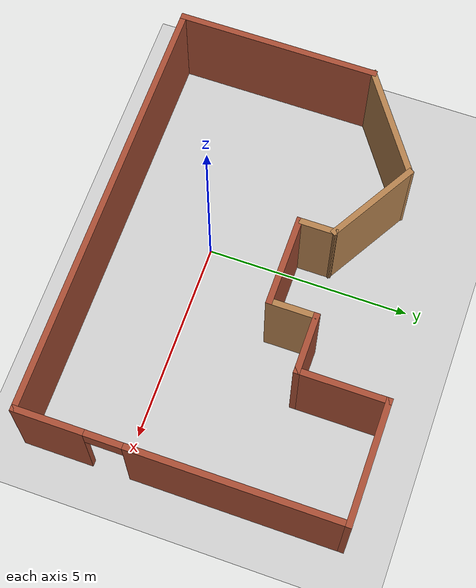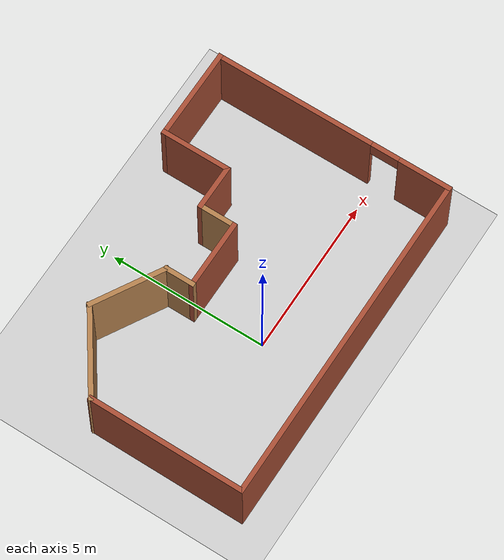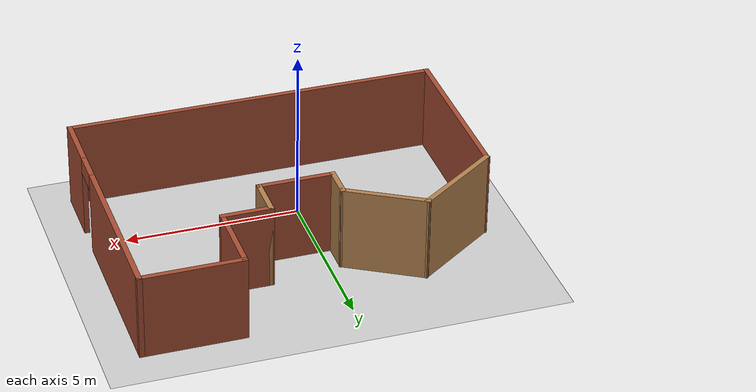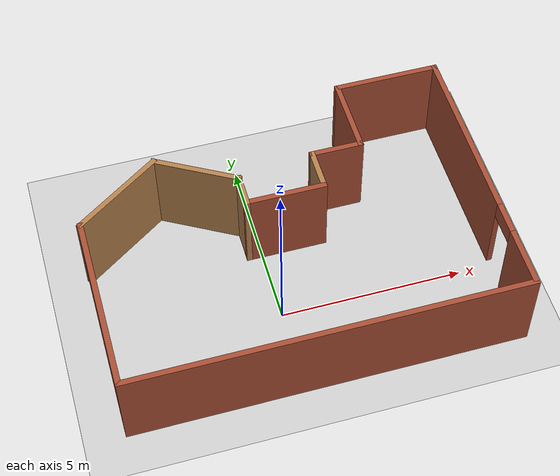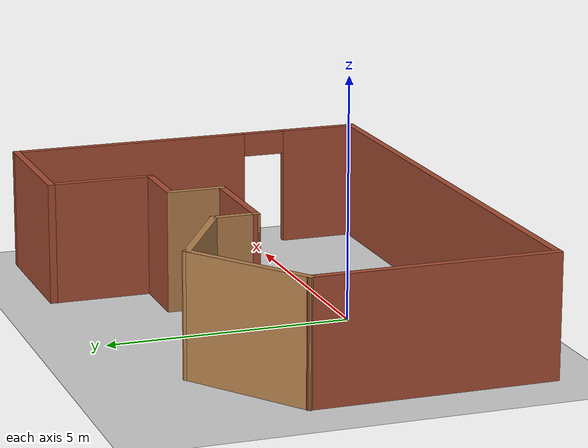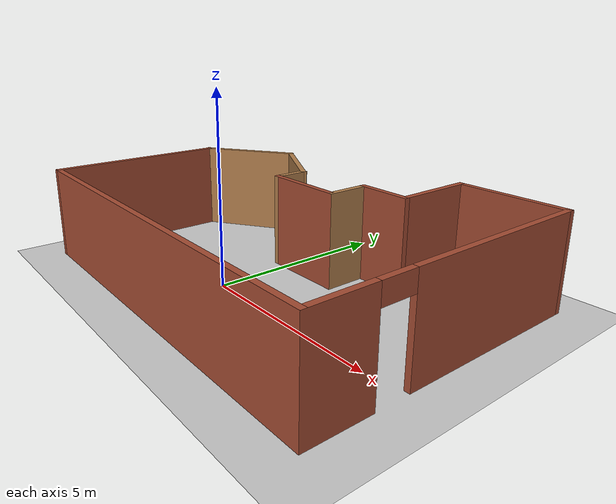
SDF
<sdf version="1.7">
 <world name="default">
  <plugin name="gazebo_ros_state" filename="libgazebo_ros_state.so">
   <ros><namespace>/demo</namespace><argument>model_states:=model_states_demo</argument></ros>
   <update_rate>1.0</update_rate>
  </plugin>
  <light name="sun" type="directional">
   <pose>0 0 10 0 -0 0</pose>
   <diffuse>0.8 0.8 0.8 1</diffuse>
   <specular>0.2 0.2 0.2 1</specular>
   <attenuation>
    <range>1000</range>
    <constant>0.9</constant>
    <linear>0.01</linear>
    <quadratic>0.001</quadratic>
   </attenuation>
   <direction>-0.5 0.1 -0.9</direction>
   <spot><inner_angle>0</inner_angle><outer_angle>0</outer_angle><falloff>0</falloff></spot>
  </light>
  <model name="ground_plane">
   <static>1</static>
   <link name="link">
    <collision name="collision">
     <geometry><plane><normal>0 0 1</normal><size>100 100</size></plane></geometry>
     <surface>
      <contact><collide_bitmask>65535</collide_bitmask></contact>
      <friction><ode><mu>100</mu><mu2>50</mu2></ode></friction>
     </surface>
    </collision>
    <visual name="visual">
     <cast_shadows>0</cast_shadows>
     <geometry><plane><normal>0 0 1</normal><size>100 100</size></plane></geometry>
     <material>
      <script><uri>file://media/materials/scripts/gazebo.material</uri><name>Gazebo/Grey</name></script>
     </material>
    </visual>
   </link>
  </model>
  <gravity>0 0 -9.8</gravity>
  <magnetic_field>6e-06 2.3e-05 -4.2e-05</magnetic_field>
  <atmosphere type="adiabatic"/>
  <physics type="ode">
   <max_step_size>0.001</max_step_size>
   <real_time_factor>1</real_time_factor>
   <real_time_update_rate>1000</real_time_update_rate>
  </physics>
  <scene><ambient>0.4 0.4 0.4 1</ambient><background>0.7 0.7 0.7 1</background><shadows>1</shadows></scene>
  <spherical_coordinates>
   <surface_model>EARTH_WGS84</surface_model>
   <latitude_deg>0</latitude_deg>
   <longitude_deg>0</longitude_deg>
   <elevation>0</elevation>
   <heading_deg>0</heading_deg>
  </spherical_coordinates>
  <model name="Untitled">
   <pose>0.624653 1.46275 0 0 -0 0</pose>
   <link name="Wall_1">
    <collision name="Wall_1_Collision">
     <geometry><box><size>5 0.15 2.5</size></box></geometry>
     <pose>0 0 1.25 0 -0 0</pose>
    </collision>
    <visual name="Wall_1_Visual">
     <pose>0 0 1.25 0 -0 0</pose>
     <geometry><box><size>5 0.15 2.5</size></box></geometry>
     <material>
      <script><uri>file://media/materials/scripts/gazebo.material</uri><name>Gazebo/Bricks</name></script>
      <ambient>1 1 1 1</ambient>
     </material>
     <meta><layer>0</layer></meta>
    </visual>
    <pose>-5.2853 -1.375 0 0 -0 -1.5708</pose>
   </link>
   <link name="Wall_10">
    <collision name="Wall_10_Collision">
     <geometry><box><size>2.5 0.15 2.5</size></box></geometry>
     <pose>0 0 1.25 0 -0 0</pose>
    </collision>
    <visual name="Wall_10_Visual">
     <pose>0 0 1.25 0 -0 0</pose>
     <geometry><box><size>2.5 0.15 2.5</size></box></geometry>
     <material>
      <script><uri>file://media/materials/scripts/gazebo.material</uri><name>Gazebo/Wood</name></script>
      <ambient>1 1 1 1</ambient>
     </material>
     <meta><layer>0</layer></meta>
    </visual>
    <pose>-2.00288 2.0375 0 0 -0 2.61799</pose>
   </link>
   <link name="Wall_11">
    <collision name="Wall_11_Collision">
     <geometry><box><size>2.90865 0.15 2.5</size></box></geometry>
     <pose>0 0 1.25 0 -0 0</pose>
    </collision>
    <visual name="Wall_11_Visual">
     <pose>0 0 1.25 0 -0 0</pose>
     <geometry><box><size>2.90865 0.15 2.5</size></box></geometry>
     <material>
      <script><uri>file://media/materials/scripts/gazebo.material</uri><name>Gazebo/Wood</name></script>
      <ambient>1 1 1 1</ambient>
     </material>
     <meta><layer>0</layer></meta>
    </visual>
    <pose>-4.15288 1.8375 0 0 -0 -2.53395</pose>
   </link>
   <link name="Wall_2">
    <collision name="Wall_2_Collision">
     <geometry><box><size>10.75 0.15 2.5</size></box></geometry>
     <pose>0 0 1.25 0 -0 0</pose>
    </collision>
    <visual name="Wall_2_Visual">
     <pose>0 0 1.25 0 -0 0</pose>
     <geometry><box><size>10.75 0.15 2.5</size></box></geometry>
     <material>
      <script><uri>file://media/materials/scripts/gazebo.material</uri><name>Gazebo/Bricks</name></script>
      <ambient>1 1 1 1</ambient>
     </material>
     <meta><layer>0</layer></meta>
    </visual>
    <pose>0.014697 -3.8 0 0 -0 0</pose>
   </link>
   <link name="Wall_3">
    <pose>5.3147 0 0 0 -0 1.5708</pose>
    <visual name="Wall_3_Visual_0">
     <pose>-3.02612 0 1.25 0 -0 0</pose>
     <geometry><box><size>1.69775 0.15 2.5</size></box></geometry>
     <material>
      <script><uri>file://media/materials/scripts/gazebo.material</uri><name>Gazebo/Bricks</name></script>
      <ambient>1 1 1 1</ambient>
     </material>
     <meta><layer>0</layer></meta>
    </visual>
    <collision name="Wall_3_Collision_0">
     <geometry><box><size>1.69775 0.15 2.5</size></box></geometry>
     <pose>-3.02612 0 1.25 0 -0 0</pose>
    </collision>
    <visual name="Wall_3_Visual_1">
     <pose>1.29888 0 1.25 0 -0 0</pose>
     <geometry><box><size>5.15225 0.15 2.5</size></box></geometry>
     <material>
      <script><uri>file://media/materials/scripts/gazebo.material</uri><name>Gazebo/Bricks</name></script>
      <ambient>1 1 1 1</ambient>
     </material>
     <meta><layer>0</layer></meta>
    </visual>
    <collision name="Wall_3_Collision_1">
     <geometry><box><size>5.15225 0.15 2.5</size></box></geometry>
     <pose>1.29888 0 1.25 0 -0 0</pose>
    </collision>
    <visual name="Wall_3_Visual_2">
     <pose>-1.72725 0 2.25 0 -0 0</pose>
     <geometry><box><size>0.9 0.15 0.5</size></box></geometry>
     <material>
      <script><uri>file://media/materials/scripts/gazebo.material</uri><name>Gazebo/Bricks</name></script>
      <ambient>1 1 1 1</ambient>
     </material>
     <meta><layer>0</layer></meta>
    </visual>
    <collision name="Wall_3_Collision_2">
     <geometry><box><size>0.9 0.15 0.5</size></box></geometry>
     <pose>-1.72725 0 2.25 0 -0 0</pose>
    </collision>
   </link>
   <link name="Wall_4">
    <collision name="Wall_4_Collision">
     <geometry><box><size>3 0.15 2.5</size></box></geometry>
     <pose>0 0 1.25 0 -0 0</pose>
    </collision>
    <visual name="Wall_4_Visual">
     <pose>0 0 1.25 0 -0 0</pose>
     <geometry><box><size>3 0.15 2.5</size></box></geometry>
     <material>
      <script><uri>file://media/materials/scripts/gazebo.material</uri><name>Gazebo/Bricks</name></script>
      <ambient>1 1 1 1</ambient>
     </material>
     <meta><layer>0</layer></meta>
    </visual>
    <pose>3.8897 3.8 0 0 -0 3.14159</pose>
   </link>
   <link name="Wall_5">
    <collision name="Wall_5_Collision">
     <geometry><box><size>2.25 0.15 2.5</size></box></geometry>
     <pose>0 0 1.25 0 -0 0</pose>
    </collision>
    <visual name="Wall_5_Visual">
     <pose>0 0 1.25 0 -0 0</pose>
     <geometry><box><size>2.25 0.15 2.5</size></box></geometry>
     <material>
      <script><uri>file://media/materials/scripts/gazebo.material</uri><name>Gazebo/Bricks</name></script>
      <ambient>1 1 1 1</ambient>
     </material>
     <meta><layer>0</layer></meta>
    </visual>
    <pose>2.4647 2.75 0 0 -0 -1.5708</pose>
   </link>
   <link name="Wall_6">
    <collision name="Wall_6_Collision">
     <geometry><box><size>1.5 0.15 2.5</size></box></geometry>
     <pose>0 0 1.25 0 -0 0</pose>
    </collision>
    <visual name="Wall_6_Visual">
     <pose>0 0 1.25 0 -0 0</pose>
     <geometry><box><size>1.5 0.15 2.5</size></box></geometry>
     <material>
      <script><uri>file://media/materials/scripts/gazebo.material</uri><name>Gazebo/Bricks</name></script>
      <ambient>1 1 1 1</ambient>
     </material>
     <meta><layer>0</layer></meta>
    </visual>
    <pose>1.7897 1.7 0 0 -0 3.14159</pose>
   </link>
   <link name="Wall_7">
    <collision name="Wall_7_Collision">
     <geometry><box><size>1.25 0.15 2.5</size></box></geometry>
     <pose>0 0 1.25 0 -0 0</pose>
    </collision>
    <visual name="Wall_7_Visual">
     <pose>0 0 1.25 0 -0 0</pose>
     <geometry><box><size>1.25 0.15 2.5</size></box></geometry>
     <material>
      <script><uri>file://media/materials/scripts/gazebo.material</uri><name>Gazebo/Wood</name></script>
      <ambient>1 1 1 1</ambient>
     </material>
     <meta><layer>0</layer></meta>
    </visual>
    <pose>1.1147 1.15 0 0 -0 -1.5708</pose>
   </link>
   <link name="Wall_8">
    <collision name="Wall_8_Collision">
     <geometry><box><size>2.25 0.15 2.5</size></box></geometry>
     <pose>0 0 1.25 0 -0 0</pose>
    </collision>
    <visual name="Wall_8_Visual">
     <pose>0 0 1.25 0 -0 0</pose>
     <geometry><box><size>2.25 0.15 2.5</size></box></geometry>
     <material>
      <script><uri>file://media/materials/scripts/gazebo.material</uri><name>Gazebo/Bricks</name></script>
      <ambient>1 1 1 1</ambient>
     </material>
     <meta><layer>0</layer></meta>
    </visual>
    <pose>0.064697 0.6 0 0 -0 3.14159</pose>
   </link>
   <link name="Wall_9">
    <collision name="Wall_9_Collision">
     <geometry><box><size>1 0.15 2.5</size></box></geometry>
     <pose>0 0 1.25 0 -0 0</pose>
    </collision>
    <visual name="Wall_9_Visual">
     <pose>0 0 1.25 0 -0 0</pose>
     <geometry><box><size>1 0.15 2.5</size></box></geometry>
     <material>
      <script><uri>file://media/materials/scripts/gazebo.material</uri><name>Gazebo/Wood</name></script>
      <ambient>1 1 1 1</ambient>
     </material>
     <meta><layer>0</layer></meta>
    </visual>
    <pose>-0.985303 1.025 0 0 -0 1.5708</pose>
   </link>
   <static>1</static>
  </model>
 </world>
</sdf>
